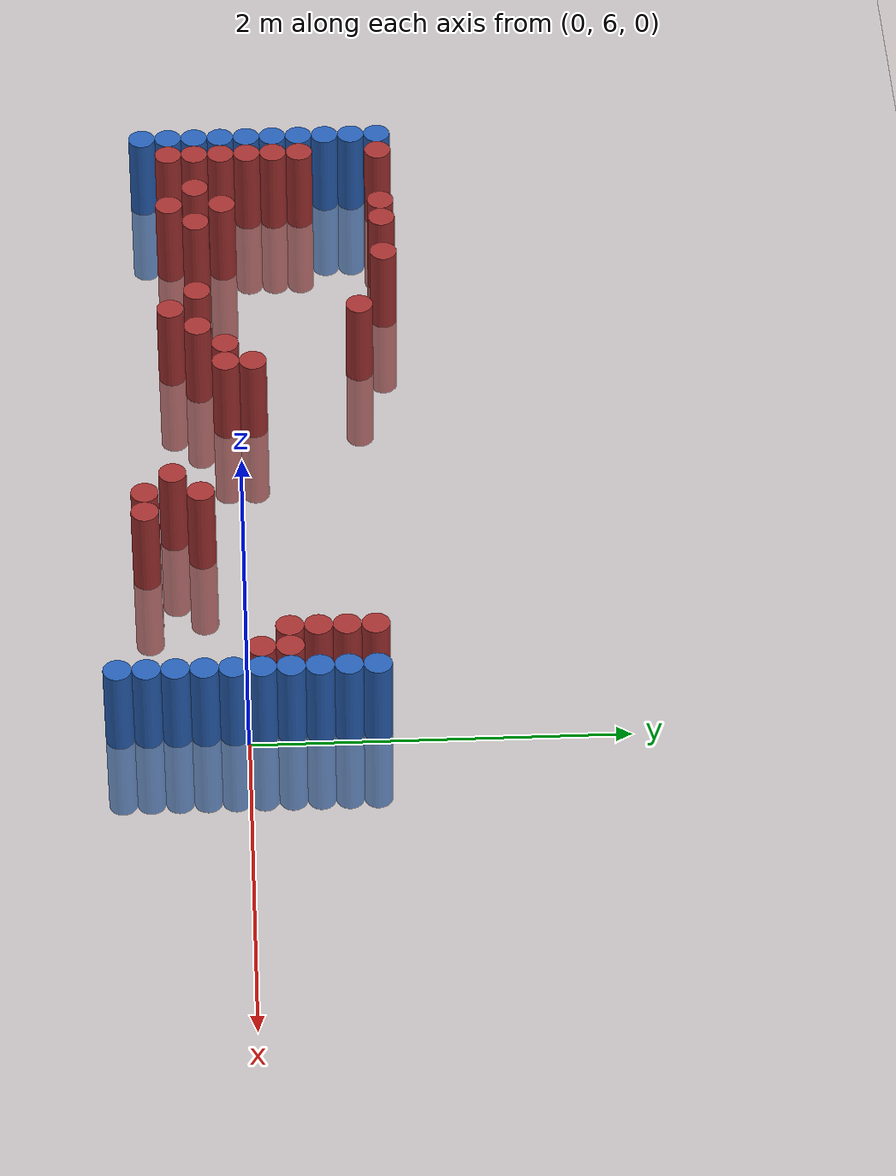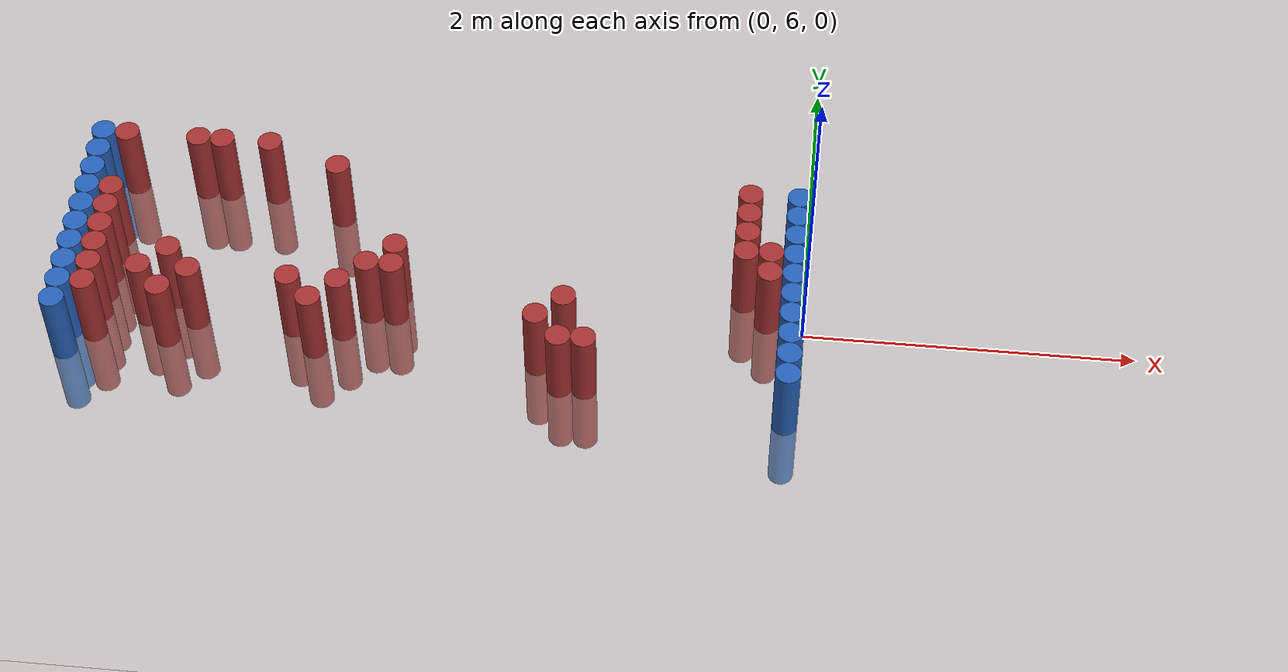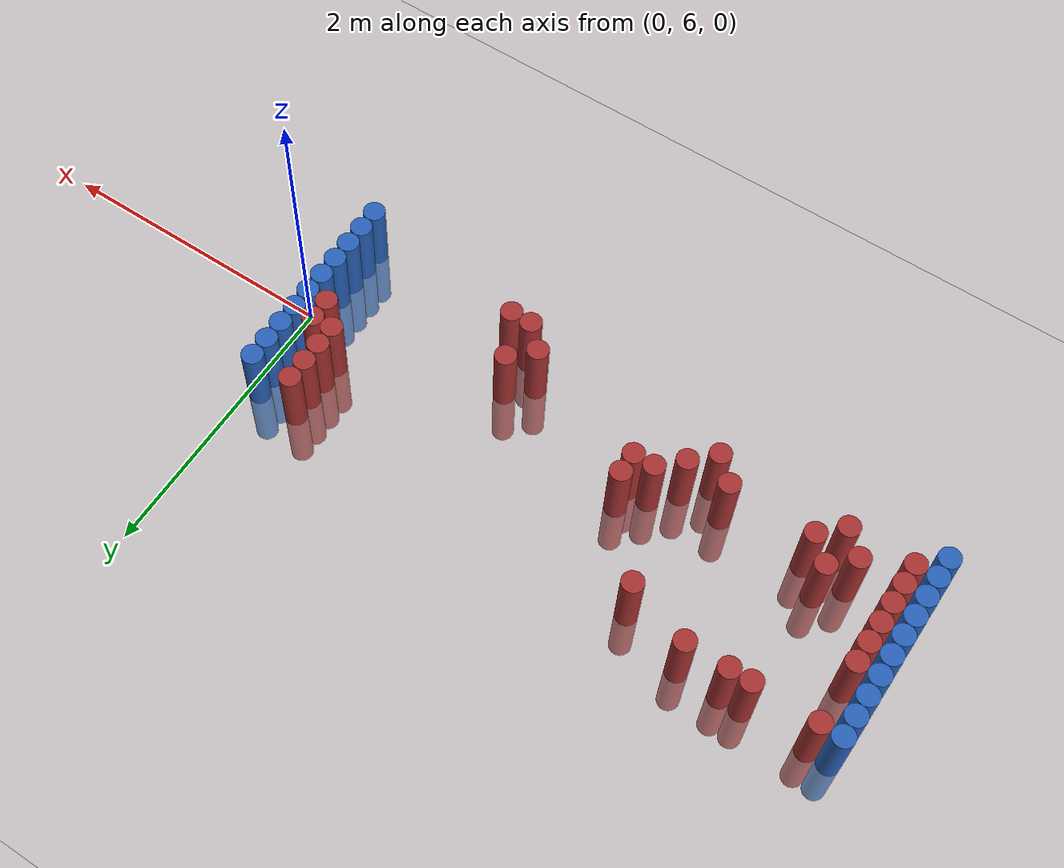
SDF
<sdf version="1.6">
 <world name="default">
  <model name="ground_plane">
   <static>1</static>
   <link name="link">
    <collision name="collision">
     <geometry><plane><normal>0 0 1</normal><size>100 100</size></plane></geometry>
     <surface><friction><ode><mu>100</mu><mu2>50</mu2></ode></friction></surface>
    </collision>
    <visual name="visual">
     <cast_shadows>0</cast_shadows>
     <geometry><plane><normal>0 0 1</normal><size>100 100</size></plane></geometry>
     <material>
      <script><uri>file://media/materials/scripts/gazebo.material</uri><name>Gazebo/Grey</name></script>
     </material>
    </visual>
   </link>
  </model>
  <model name="unit_cylinder_98">
   <static>1</static>
   <pose>-4.425000 5.475000 0.000000 0.000000 0.000000 0.000000</pose>
   <link name="link">
    <inertial>
     <mass>1</mass>
     <inertia><ixx>0.145833</ixx><ixy>0</ixy><ixz>0</ixz><iyy>0.145833</iyy><iyz>0</iyz><izz>0.125</izz></inertia>
    </inertial>
    <collision name="collision">
     <geometry><cylinder><radius>0.075000</radius><length>1</length></cylinder></geometry>
    </collision>
    <visual name="visual">
     <geometry><cylinder><radius>0.075000</radius><length>1</length></cylinder></geometry>
     <material>
      <ambient>0.152000 0.379000 0.720000 1</ambient>
      <diffuse>0.152000 0.379000 0.720000 1</diffuse>
     </material>
     <material>
      <script><name>Gazebo/Grey</name><uri>file://media/materials/scripts/gazebo.material</uri></script>
     </material>
    </visual>
   </link>
  </model>
  <model name="unit_cylinder_99">
   <static>1</static>
   <pose>-4.425000 5.625000 0.000000 0.000000 0.000000 0.000000</pose>
   <link name="link">
    <inertial>
     <mass>1</mass>
     <inertia><ixx>0.145833</ixx><ixy>0</ixy><ixz>0</ixz><iyy>0.145833</iyy><iyz>0</iyz><izz>0.125</izz></inertia>
    </inertial>
    <collision name="collision">
     <geometry><cylinder><radius>0.075000</radius><length>1</length></cylinder></geometry>
    </collision>
    <visual name="visual">
     <geometry><cylinder><radius>0.075000</radius><length>1</length></cylinder></geometry>
     <material>
      <ambient>0.152000 0.379000 0.720000 1</ambient>
      <diffuse>0.152000 0.379000 0.720000 1</diffuse>
     </material>
     <material>
      <script><name>Gazebo/Grey</name><uri>file://media/materials/scripts/gazebo.material</uri></script>
     </material>
    </visual>
   </link>
  </model>
  <model name="unit_cylinder_100">
   <static>1</static>
   <pose>-4.425000 5.775000 0.000000 0.000000 0.000000 0.000000</pose>
   <link name="link">
    <inertial>
     <mass>1</mass>
     <inertia><ixx>0.145833</ixx><ixy>0</ixy><ixz>0</ixz><iyy>0.145833</iyy><iyz>0</iyz><izz>0.125</izz></inertia>
    </inertial>
    <collision name="collision">
     <geometry><cylinder><radius>0.075000</radius><length>1</length></cylinder></geometry>
    </collision>
    <visual name="visual">
     <geometry><cylinder><radius>0.075000</radius><length>1</length></cylinder></geometry>
     <material>
      <ambient>0.152000 0.379000 0.720000 1</ambient>
      <diffuse>0.152000 0.379000 0.720000 1</diffuse>
     </material>
     <material>
      <script><name>Gazebo/Grey</name><uri>file://media/materials/scripts/gazebo.material</uri></script>
     </material>
    </visual>
   </link>
  </model>
  <model name="unit_cylinder_101">
   <static>1</static>
   <pose>-4.425000 5.925000 0.000000 0.000000 0.000000 0.000000</pose>
   <link name="link">
    <inertial>
     <mass>1</mass>
     <inertia><ixx>0.145833</ixx><ixy>0</ixy><ixz>0</ixz><iyy>0.145833</iyy><iyz>0</iyz><izz>0.125</izz></inertia>
    </inertial>
    <collision name="collision">
     <geometry><cylinder><radius>0.075000</radius><length>1</length></cylinder></geometry>
    </collision>
    <visual name="visual">
     <geometry><cylinder><radius>0.075000</radius><length>1</length></cylinder></geometry>
     <material>
      <ambient>0.152000 0.379000 0.720000 1</ambient>
      <diffuse>0.152000 0.379000 0.720000 1</diffuse>
     </material>
     <material>
      <script><name>Gazebo/Grey</name><uri>file://media/materials/scripts/gazebo.material</uri></script>
     </material>
    </visual>
   </link>
  </model>
  <model name="unit_cylinder_102">
   <static>1</static>
   <pose>-4.425000 6.075000 0.000000 0.000000 0.000000 0.000000</pose>
   <link name="link">
    <inertial>
     <mass>1</mass>
     <inertia><ixx>0.145833</ixx><ixy>0</ixy><ixz>0</ixz><iyy>0.145833</iyy><iyz>0</iyz><izz>0.125</izz></inertia>
    </inertial>
    <collision name="collision">
     <geometry><cylinder><radius>0.075000</radius><length>1</length></cylinder></geometry>
    </collision>
    <visual name="visual">
     <geometry><cylinder><radius>0.075000</radius><length>1</length></cylinder></geometry>
     <material>
      <ambient>0.152000 0.379000 0.720000 1</ambient>
      <diffuse>0.152000 0.379000 0.720000 1</diffuse>
     </material>
     <material>
      <script><name>Gazebo/Grey</name><uri>file://media/materials/scripts/gazebo.material</uri></script>
     </material>
    </visual>
   </link>
  </model>
  <model name="unit_cylinder_103">
   <static>1</static>
   <pose>-4.425000 6.225000 0.000000 0.000000 0.000000 0.000000</pose>
   <link name="link">
    <inertial>
     <mass>1</mass>
     <inertia><ixx>0.145833</ixx><ixy>0</ixy><ixz>0</ixz><iyy>0.145833</iyy><iyz>0</iyz><izz>0.125</izz></inertia>
    </inertial>
    <collision name="collision">
     <geometry><cylinder><radius>0.075000</radius><length>1</length></cylinder></geometry>
    </collision>
    <visual name="visual">
     <geometry><cylinder><radius>0.075000</radius><length>1</length></cylinder></geometry>
     <material>
      <ambient>0.152000 0.379000 0.720000 1</ambient>
      <diffuse>0.152000 0.379000 0.720000 1</diffuse>
     </material>
     <material>
      <script><name>Gazebo/Grey</name><uri>file://media/materials/scripts/gazebo.material</uri></script>
     </material>
    </visual>
   </link>
  </model>
  <model name="unit_cylinder_104">
   <static>1</static>
   <pose>-4.425000 6.375000 0.000000 0.000000 0.000000 0.000000</pose>
   <link name="link">
    <inertial>
     <mass>1</mass>
     <inertia><ixx>0.145833</ixx><ixy>0</ixy><ixz>0</ixz><iyy>0.145833</iyy><iyz>0</iyz><izz>0.125</izz></inertia>
    </inertial>
    <collision name="collision">
     <geometry><cylinder><radius>0.075000</radius><length>1</length></cylinder></geometry>
    </collision>
    <visual name="visual">
     <geometry><cylinder><radius>0.075000</radius><length>1</length></cylinder></geometry>
     <material>
      <ambient>0.152000 0.379000 0.720000 1</ambient>
      <diffuse>0.152000 0.379000 0.720000 1</diffuse>
     </material>
     <material>
      <script><name>Gazebo/Grey</name><uri>file://media/materials/scripts/gazebo.material</uri></script>
     </material>
    </visual>
   </link>
  </model>
  <model name="unit_cylinder_105">
   <static>1</static>
   <pose>-4.425000 6.525000 0.000000 0.000000 0.000000 0.000000</pose>
   <link name="link">
    <inertial>
     <mass>1</mass>
     <inertia><ixx>0.145833</ixx><ixy>0</ixy><ixz>0</ixz><iyy>0.145833</iyy><iyz>0</iyz><izz>0.125</izz></inertia>
    </inertial>
    <collision name="collision">
     <geometry><cylinder><radius>0.075000</radius><length>1</length></cylinder></geometry>
    </collision>
    <visual name="visual">
     <geometry><cylinder><radius>0.075000</radius><length>1</length></cylinder></geometry>
     <material>
      <ambient>0.152000 0.379000 0.720000 1</ambient>
      <diffuse>0.152000 0.379000 0.720000 1</diffuse>
     </material>
     <material>
      <script><name>Gazebo/Grey</name><uri>file://media/materials/scripts/gazebo.material</uri></script>
     </material>
    </visual>
   </link>
  </model>
  <model name="unit_cylinder_106">
   <static>1</static>
   <pose>-4.425000 6.675000 0.000000 0.000000 0.000000 0.000000</pose>
   <link name="link">
    <inertial>
     <mass>1</mass>
     <inertia><ixx>0.145833</ixx><ixy>0</ixy><ixz>0</ixz><iyy>0.145833</iyy><iyz>0</iyz><izz>0.125</izz></inertia>
    </inertial>
    <collision name="collision">
     <geometry><cylinder><radius>0.075000</radius><length>1</length></cylinder></geometry>
    </collision>
    <visual name="visual">
     <geometry><cylinder><radius>0.075000</radius><length>1</length></cylinder></geometry>
     <material>
      <ambient>0.152000 0.379000 0.720000 1</ambient>
      <diffuse>0.152000 0.379000 0.720000 1</diffuse>
     </material>
     <material>
      <script><name>Gazebo/Grey</name><uri>file://media/materials/scripts/gazebo.material</uri></script>
     </material>
    </visual>
   </link>
  </model>
  <model name="unit_cylinder_107">
   <static>1</static>
   <pose>-4.425000 6.825000 0.000000 0.000000 0.000000 0.000000</pose>
   <link name="link">
    <inertial>
     <mass>1</mass>
     <inertia><ixx>0.145833</ixx><ixy>0</ixy><ixz>0</ixz><iyy>0.145833</iyy><iyz>0</iyz><izz>0.125</izz></inertia>
    </inertial>
    <collision name="collision">
     <geometry><cylinder><radius>0.075000</radius><length>1</length></cylinder></geometry>
    </collision>
    <visual name="visual">
     <geometry><cylinder><radius>0.075000</radius><length>1</length></cylinder></geometry>
     <material>
      <ambient>0.152000 0.379000 0.720000 1</ambient>
      <diffuse>0.152000 0.379000 0.720000 1</diffuse>
     </material>
     <material>
      <script><name>Gazebo/Grey</name><uri>file://media/materials/scripts/gazebo.material</uri></script>
     </material>
    </visual>
   </link>
  </model>
  <model name="unit_cylinder_126">
   <static>1</static>
   <pose>-4.275000 5.625000 0.000000 0.000000 0.000000 0.000000</pose>
   <link name="link">
    <inertial>
     <mass>1</mass>
     <inertia><ixx>0.145833</ixx><ixy>0</ixy><ixz>0</ixz><iyy>0.145833</iyy><iyz>0</iyz><izz>0.125</izz></inertia>
    </inertial>
    <collision name="collision">
     <geometry><cylinder><radius>0.075000</radius><length>1</length></cylinder></geometry>
    </collision>
    <visual name="visual">
     <geometry><cylinder><radius>0.075000</radius><length>1</length></cylinder></geometry>
     <material>
      <ambient>0.648000 0.192000 0.192000 1</ambient>
      <diffuse>0.648000 0.192000 0.192000 1</diffuse>
     </material>
     <material>
      <script><name>Gazebo/Grey</name><uri>file://media/materials/scripts/gazebo.material</uri></script>
     </material>
    </visual>
   </link>
  </model>
  <model name="unit_cylinder_127">
   <static>1</static>
   <pose>-4.275000 5.775000 0.000000 0.000000 0.000000 0.000000</pose>
   <link name="link">
    <inertial>
     <mass>1</mass>
     <inertia><ixx>0.145833</ixx><ixy>0</ixy><ixz>0</ixz><iyy>0.145833</iyy><iyz>0</iyz><izz>0.125</izz></inertia>
    </inertial>
    <collision name="collision">
     <geometry><cylinder><radius>0.075000</radius><length>1</length></cylinder></geometry>
    </collision>
    <visual name="visual">
     <geometry><cylinder><radius>0.075000</radius><length>1</length></cylinder></geometry>
     <material>
      <ambient>0.648000 0.192000 0.192000 1</ambient>
      <diffuse>0.648000 0.192000 0.192000 1</diffuse>
     </material>
     <material>
      <script><name>Gazebo/Grey</name><uri>file://media/materials/scripts/gazebo.material</uri></script>
     </material>
    </visual>
   </link>
  </model>
  <model name="unit_cylinder_128">
   <static>1</static>
   <pose>-4.275000 5.925000 0.000000 0.000000 0.000000 0.000000</pose>
   <link name="link">
    <inertial>
     <mass>1</mass>
     <inertia><ixx>0.145833</ixx><ixy>0</ixy><ixz>0</ixz><iyy>0.145833</iyy><iyz>0</iyz><izz>0.125</izz></inertia>
    </inertial>
    <collision name="collision">
     <geometry><cylinder><radius>0.075000</radius><length>1</length></cylinder></geometry>
    </collision>
    <visual name="visual">
     <geometry><cylinder><radius>0.075000</radius><length>1</length></cylinder></geometry>
     <material>
      <ambient>0.648000 0.192000 0.192000 1</ambient>
      <diffuse>0.648000 0.192000 0.192000 1</diffuse>
     </material>
     <material>
      <script><name>Gazebo/Grey</name><uri>file://media/materials/scripts/gazebo.material</uri></script>
     </material>
    </visual>
   </link>
  </model>
  <model name="unit_cylinder_129">
   <static>1</static>
   <pose>-4.275000 6.075000 0.000000 0.000000 0.000000 0.000000</pose>
   <link name="link">
    <inertial>
     <mass>1</mass>
     <inertia><ixx>0.145833</ixx><ixy>0</ixy><ixz>0</ixz><iyy>0.145833</iyy><iyz>0</iyz><izz>0.125</izz></inertia>
    </inertial>
    <collision name="collision">
     <geometry><cylinder><radius>0.075000</radius><length>1</length></cylinder></geometry>
    </collision>
    <visual name="visual">
     <geometry><cylinder><radius>0.075000</radius><length>1</length></cylinder></geometry>
     <material>
      <ambient>0.648000 0.192000 0.192000 1</ambient>
      <diffuse>0.648000 0.192000 0.192000 1</diffuse>
     </material>
     <material>
      <script><name>Gazebo/Grey</name><uri>file://media/materials/scripts/gazebo.material</uri></script>
     </material>
    </visual>
   </link>
  </model>
  <model name="unit_cylinder_130">
   <static>1</static>
   <pose>-4.275000 6.225000 0.000000 0.000000 0.000000 0.000000</pose>
   <link name="link">
    <inertial>
     <mass>1</mass>
     <inertia><ixx>0.145833</ixx><ixy>0</ixy><ixz>0</ixz><iyy>0.145833</iyy><iyz>0</iyz><izz>0.125</izz></inertia>
    </inertial>
    <collision name="collision">
     <geometry><cylinder><radius>0.075000</radius><length>1</length></cylinder></geometry>
    </collision>
    <visual name="visual">
     <geometry><cylinder><radius>0.075000</radius><length>1</length></cylinder></geometry>
     <material>
      <ambient>0.648000 0.192000 0.192000 1</ambient>
      <diffuse>0.648000 0.192000 0.192000 1</diffuse>
     </material>
     <material>
      <script><name>Gazebo/Grey</name><uri>file://media/materials/scripts/gazebo.material</uri></script>
     </material>
    </visual>
   </link>
  </model>
  <model name="unit_cylinder_131">
   <static>1</static>
   <pose>-4.275000 6.375000 0.000000 0.000000 0.000000 0.000000</pose>
   <link name="link">
    <inertial>
     <mass>1</mass>
     <inertia><ixx>0.145833</ixx><ixy>0</ixy><ixz>0</ixz><iyy>0.145833</iyy><iyz>0</iyz><izz>0.125</izz></inertia>
    </inertial>
    <collision name="collision">
     <geometry><cylinder><radius>0.075000</radius><length>1</length></cylinder></geometry>
    </collision>
    <visual name="visual">
     <geometry><cylinder><radius>0.075000</radius><length>1</length></cylinder></geometry>
     <material>
      <ambient>0.648000 0.192000 0.192000 1</ambient>
      <diffuse>0.648000 0.192000 0.192000 1</diffuse>
     </material>
     <material>
      <script><name>Gazebo/Grey</name><uri>file://media/materials/scripts/gazebo.material</uri></script>
     </material>
    </visual>
   </link>
  </model>
  <model name="unit_cylinder_132">
   <static>1</static>
   <pose>-4.275000 6.825000 0.000000 0.000000 0.000000 0.000000</pose>
   <link name="link">
    <inertial>
     <mass>1</mass>
     <inertia><ixx>0.145833</ixx><ixy>0</ixy><ixz>0</ixz><iyy>0.145833</iyy><iyz>0</iyz><izz>0.125</izz></inertia>
    </inertial>
    <collision name="collision">
     <geometry><cylinder><radius>0.075000</radius><length>1</length></cylinder></geometry>
    </collision>
    <visual name="visual">
     <geometry><cylinder><radius>0.075000</radius><length>1</length></cylinder></geometry>
     <material>
      <ambient>0.648000 0.192000 0.192000 1</ambient>
      <diffuse>0.648000 0.192000 0.192000 1</diffuse>
     </material>
     <material>
      <script><name>Gazebo/Grey</name><uri>file://media/materials/scripts/gazebo.material</uri></script>
     </material>
    </visual>
   </link>
  </model>
  <model name="unit_cylinder_150">
   <static>1</static>
   <pose>-3.975000 5.775000 0.000000 0.000000 0.000000 0.000000</pose>
   <link name="link">
    <inertial>
     <mass>1</mass>
     <inertia><ixx>0.145833</ixx><ixy>0</ixy><ixz>0</ixz><iyy>0.145833</iyy><iyz>0</iyz><izz>0.125</izz></inertia>
    </inertial>
    <collision name="collision">
     <geometry><cylinder><radius>0.075000</radius><length>1</length></cylinder></geometry>
    </collision>
    <visual name="visual">
     <geometry><cylinder><radius>0.075000</radius><length>1</length></cylinder></geometry>
     <material>
      <ambient>0.648000 0.192000 0.192000 1</ambient>
      <diffuse>0.648000 0.192000 0.192000 1</diffuse>
     </material>
     <material>
      <script><name>Gazebo/Grey</name><uri>file://media/materials/scripts/gazebo.material</uri></script>
     </material>
    </visual>
   </link>
  </model>
  <model name="unit_cylinder_155">
   <static>1</static>
   <pose>-3.825000 5.625000 0.000000 0.000000 0.000000 0.000000</pose>
   <link name="link">
    <inertial>
     <mass>1</mass>
     <inertia><ixx>0.145833</ixx><ixy>0</ixy><ixz>0</ixz><iyy>0.145833</iyy><iyz>0</iyz><izz>0.125</izz></inertia>
    </inertial>
    <collision name="collision">
     <geometry><cylinder><radius>0.075000</radius><length>1</length></cylinder></geometry>
    </collision>
    <visual name="visual">
     <geometry><cylinder><radius>0.075000</radius><length>1</length></cylinder></geometry>
     <material>
      <ambient>0.648000 0.192000 0.192000 1</ambient>
      <diffuse>0.648000 0.192000 0.192000 1</diffuse>
     </material>
     <material>
      <script><name>Gazebo/Grey</name><uri>file://media/materials/scripts/gazebo.material</uri></script>
     </material>
    </visual>
   </link>
  </model>
  <model name="unit_cylinder_156">
   <static>1</static>
   <pose>-3.825000 5.925000 0.000000 0.000000 0.000000 0.000000</pose>
   <link name="link">
    <inertial>
     <mass>1</mass>
     <inertia><ixx>0.145833</ixx><ixy>0</ixy><ixz>0</ixz><iyy>0.145833</iyy><iyz>0</iyz><izz>0.125</izz></inertia>
    </inertial>
    <collision name="collision">
     <geometry><cylinder><radius>0.075000</radius><length>1</length></cylinder></geometry>
    </collision>
    <visual name="visual">
     <geometry><cylinder><radius>0.075000</radius><length>1</length></cylinder></geometry>
     <material>
      <ambient>0.648000 0.192000 0.192000 1</ambient>
      <diffuse>0.648000 0.192000 0.192000 1</diffuse>
     </material>
     <material>
      <script><name>Gazebo/Grey</name><uri>file://media/materials/scripts/gazebo.material</uri></script>
     </material>
    </visual>
   </link>
  </model>
  <model name="unit_cylinder_157">
   <static>1</static>
   <pose>-3.825000 6.825000 0.000000 0.000000 0.000000 0.000000</pose>
   <link name="link">
    <inertial>
     <mass>1</mass>
     <inertia><ixx>0.145833</ixx><ixy>0</ixy><ixz>0</ixz><iyy>0.145833</iyy><iyz>0</iyz><izz>0.125</izz></inertia>
    </inertial>
    <collision name="collision">
     <geometry><cylinder><radius>0.075000</radius><length>1</length></cylinder></geometry>
    </collision>
    <visual name="visual">
     <geometry><cylinder><radius>0.075000</radius><length>1</length></cylinder></geometry>
     <material>
      <ambient>0.648000 0.192000 0.192000 1</ambient>
      <diffuse>0.648000 0.192000 0.192000 1</diffuse>
     </material>
     <material>
      <script><name>Gazebo/Grey</name><uri>file://media/materials/scripts/gazebo.material</uri></script>
     </material>
    </visual>
   </link>
  </model>
  <model name="unit_cylinder_161">
   <static>1</static>
   <pose>-3.675000 5.775000 0.000000 0.000000 0.000000 0.000000</pose>
   <link name="link">
    <inertial>
     <mass>1</mass>
     <inertia><ixx>0.145833</ixx><ixy>0</ixy><ixz>0</ixz><iyy>0.145833</iyy><iyz>0</iyz><izz>0.125</izz></inertia>
    </inertial>
    <collision name="collision">
     <geometry><cylinder><radius>0.075000</radius><length>1</length></cylinder></geometry>
    </collision>
    <visual name="visual">
     <geometry><cylinder><radius>0.075000</radius><length>1</length></cylinder></geometry>
     <material>
      <ambient>0.648000 0.192000 0.192000 1</ambient>
      <diffuse>0.648000 0.192000 0.192000 1</diffuse>
     </material>
     <material>
      <script><name>Gazebo/Grey</name><uri>file://media/materials/scripts/gazebo.material</uri></script>
     </material>
    </visual>
   </link>
  </model>
  <model name="unit_cylinder_162">
   <static>1</static>
   <pose>-3.675000 6.825000 0.000000 0.000000 0.000000 0.000000</pose>
   <link name="link">
    <inertial>
     <mass>1</mass>
     <inertia><ixx>0.145833</ixx><ixy>0</ixy><ixz>0</ixz><iyy>0.145833</iyy><iyz>0</iyz><izz>0.125</izz></inertia>
    </inertial>
    <collision name="collision">
     <geometry><cylinder><radius>0.075000</radius><length>1</length></cylinder></geometry>
    </collision>
    <visual name="visual">
     <geometry><cylinder><radius>0.075000</radius><length>1</length></cylinder></geometry>
     <material>
      <ambient>0.648000 0.192000 0.192000 1</ambient>
      <diffuse>0.648000 0.192000 0.192000 1</diffuse>
     </material>
     <material>
      <script><name>Gazebo/Grey</name><uri>file://media/materials/scripts/gazebo.material</uri></script>
     </material>
    </visual>
   </link>
  </model>
  <model name="unit_cylinder_171">
   <static>1</static>
   <pose>-3.375000 6.825000 0.000000 0.000000 0.000000 0.000000</pose>
   <link name="link">
    <inertial>
     <mass>1</mass>
     <inertia><ixx>0.145833</ixx><ixy>0</ixy><ixz>0</ixz><iyy>0.145833</iyy><iyz>0</iyz><izz>0.125</izz></inertia>
    </inertial>
    <collision name="collision">
     <geometry><cylinder><radius>0.075000</radius><length>1</length></cylinder></geometry>
    </collision>
    <visual name="visual">
     <geometry><cylinder><radius>0.075000</radius><length>1</length></cylinder></geometry>
     <material>
      <ambient>0.648000 0.192000 0.192000 1</ambient>
      <diffuse>0.648000 0.192000 0.192000 1</diffuse>
     </material>
     <material>
      <script><name>Gazebo/Grey</name><uri>file://media/materials/scripts/gazebo.material</uri></script>
     </material>
    </visual>
   </link>
  </model>
  <model name="unit_cylinder_177">
   <static>1</static>
   <pose>-3.075000 5.775000 0.000000 0.000000 0.000000 0.000000</pose>
   <link name="link">
    <inertial>
     <mass>1</mass>
     <inertia><ixx>0.145833</ixx><ixy>0</ixy><ixz>0</ixz><iyy>0.145833</iyy><iyz>0</iyz><izz>0.125</izz></inertia>
    </inertial>
    <collision name="collision">
     <geometry><cylinder><radius>0.075000</radius><length>1</length></cylinder></geometry>
    </collision>
    <visual name="visual">
     <geometry><cylinder><radius>0.075000</radius><length>1</length></cylinder></geometry>
     <material>
      <ambient>0.648000 0.192000 0.192000 1</ambient>
      <diffuse>0.648000 0.192000 0.192000 1</diffuse>
     </material>
     <material>
      <script><name>Gazebo/Grey</name><uri>file://media/materials/scripts/gazebo.material</uri></script>
     </material>
    </visual>
   </link>
  </model>
  <model name="unit_cylinder_181">
   <static>1</static>
   <pose>-2.925000 5.625000 0.000000 0.000000 0.000000 0.000000</pose>
   <link name="link">
    <inertial>
     <mass>1</mass>
     <inertia><ixx>0.145833</ixx><ixy>0</ixy><ixz>0</ixz><iyy>0.145833</iyy><iyz>0</iyz><izz>0.125</izz></inertia>
    </inertial>
    <collision name="collision">
     <geometry><cylinder><radius>0.075000</radius><length>1</length></cylinder></geometry>
    </collision>
    <visual name="visual">
     <geometry><cylinder><radius>0.075000</radius><length>1</length></cylinder></geometry>
     <material>
      <ambient>0.648000 0.192000 0.192000 1</ambient>
      <diffuse>0.648000 0.192000 0.192000 1</diffuse>
     </material>
     <material>
      <script><name>Gazebo/Grey</name><uri>file://media/materials/scripts/gazebo.material</uri></script>
     </material>
    </visual>
   </link>
  </model>
  <model name="unit_cylinder_182">
   <static>1</static>
   <pose>-2.925000 6.675000 0.000000 0.000000 0.000000 0.000000</pose>
   <link name="link">
    <inertial>
     <mass>1</mass>
     <inertia><ixx>0.145833</ixx><ixy>0</ixy><ixz>0</ixz><iyy>0.145833</iyy><iyz>0</iyz><izz>0.125</izz></inertia>
    </inertial>
    <collision name="collision">
     <geometry><cylinder><radius>0.075000</radius><length>1</length></cylinder></geometry>
    </collision>
    <visual name="visual">
     <geometry><cylinder><radius>0.075000</radius><length>1</length></cylinder></geometry>
     <material>
      <ambient>0.648000 0.192000 0.192000 1</ambient>
      <diffuse>0.648000 0.192000 0.192000 1</diffuse>
     </material>
     <material>
      <script><name>Gazebo/Grey</name><uri>file://media/materials/scripts/gazebo.material</uri></script>
     </material>
    </visual>
   </link>
  </model>
  <model name="unit_cylinder_186">
   <static>1</static>
   <pose>-2.775000 5.775000 0.000000 0.000000 0.000000 0.000000</pose>
   <link name="link">
    <inertial>
     <mass>1</mass>
     <inertia><ixx>0.145833</ixx><ixy>0</ixy><ixz>0</ixz><iyy>0.145833</iyy><iyz>0</iyz><izz>0.125</izz></inertia>
    </inertial>
    <collision name="collision">
     <geometry><cylinder><radius>0.075000</radius><length>1</length></cylinder></geometry>
    </collision>
    <visual name="visual">
     <geometry><cylinder><radius>0.075000</radius><length>1</length></cylinder></geometry>
     <material>
      <ambient>0.648000 0.192000 0.192000 1</ambient>
      <diffuse>0.648000 0.192000 0.192000 1</diffuse>
     </material>
     <material>
      <script><name>Gazebo/Grey</name><uri>file://media/materials/scripts/gazebo.material</uri></script>
     </material>
    </visual>
   </link>
  </model>
  <model name="unit_cylinder_191">
   <static>1</static>
   <pose>-2.625000 5.925000 0.000000 0.000000 0.000000 0.000000</pose>
   <link name="link">
    <inertial>
     <mass>1</mass>
     <inertia><ixx>0.145833</ixx><ixy>0</ixy><ixz>0</ixz><iyy>0.145833</iyy><iyz>0</iyz><izz>0.125</izz></inertia>
    </inertial>
    <collision name="collision">
     <geometry><cylinder><radius>0.075000</radius><length>1</length></cylinder></geometry>
    </collision>
    <visual name="visual">
     <geometry><cylinder><radius>0.075000</radius><length>1</length></cylinder></geometry>
     <material>
      <ambient>0.648000 0.192000 0.192000 1</ambient>
      <diffuse>0.648000 0.192000 0.192000 1</diffuse>
     </material>
     <material>
      <script><name>Gazebo/Grey</name><uri>file://media/materials/scripts/gazebo.material</uri></script>
     </material>
    </visual>
   </link>
  </model>
  <model name="unit_cylinder_194">
   <static>1</static>
   <pose>-2.475000 5.925000 0.000000 0.000000 0.000000 0.000000</pose>
   <link name="link">
    <inertial>
     <mass>1</mass>
     <inertia><ixx>0.145833</ixx><ixy>0</ixy><ixz>0</ixz><iyy>0.145833</iyy><iyz>0</iyz><izz>0.125</izz></inertia>
    </inertial>
    <collision name="collision">
     <geometry><cylinder><radius>0.075000</radius><length>1</length></cylinder></geometry>
    </collision>
    <visual name="visual">
     <geometry><cylinder><radius>0.075000</radius><length>1</length></cylinder></geometry>
     <material>
      <ambient>0.648000 0.192000 0.192000 1</ambient>
      <diffuse>0.648000 0.192000 0.192000 1</diffuse>
     </material>
     <material>
      <script><name>Gazebo/Grey</name><uri>file://media/materials/scripts/gazebo.material</uri></script>
     </material>
    </visual>
   </link>
  </model>
  <model name="unit_cylinder_195">
   <static>1</static>
   <pose>-2.475000 6.075000 0.000000 0.000000 0.000000 0.000000</pose>
   <link name="link">
    <inertial>
     <mass>1</mass>
     <inertia><ixx>0.145833</ixx><ixy>0</ixy><ixz>0</ixz><iyy>0.145833</iyy><iyz>0</iyz><izz>0.125</izz></inertia>
    </inertial>
    <collision name="collision">
     <geometry><cylinder><radius>0.075000</radius><length>1</length></cylinder></geometry>
    </collision>
    <visual name="visual">
     <geometry><cylinder><radius>0.075000</radius><length>1</length></cylinder></geometry>
     <material>
      <ambient>0.648000 0.192000 0.192000 1</ambient>
      <diffuse>0.648000 0.192000 0.192000 1</diffuse>
     </material>
     <material>
      <script><name>Gazebo/Grey</name><uri>file://media/materials/scripts/gazebo.material</uri></script>
     </material>
    </visual>
   </link>
  </model>
  <model name="unit_cylinder_213">
   <static>1</static>
   <pose>-1.575000 5.625000 0.000000 0.000000 0.000000 0.000000</pose>
   <link name="link">
    <inertial>
     <mass>1</mass>
     <inertia><ixx>0.145833</ixx><ixy>0</ixy><ixz>0</ixz><iyy>0.145833</iyy><iyz>0</iyz><izz>0.125</izz></inertia>
    </inertial>
    <collision name="collision">
     <geometry><cylinder><radius>0.075000</radius><length>1</length></cylinder></geometry>
    </collision>
    <visual name="visual">
     <geometry><cylinder><radius>0.075000</radius><length>1</length></cylinder></geometry>
     <material>
      <ambient>0.648000 0.192000 0.192000 1</ambient>
      <diffuse>0.648000 0.192000 0.192000 1</diffuse>
     </material>
     <material>
      <script><name>Gazebo/Grey</name><uri>file://media/materials/scripts/gazebo.material</uri></script>
     </material>
    </visual>
   </link>
  </model>
  <model name="unit_cylinder_218">
   <static>1</static>
   <pose>-1.425000 5.475000 0.000000 0.000000 0.000000 0.000000</pose>
   <link name="link">
    <inertial>
     <mass>1</mass>
     <inertia><ixx>0.145833</ixx><ixy>0</ixy><ixz>0</ixz><iyy>0.145833</iyy><iyz>0</iyz><izz>0.125</izz></inertia>
    </inertial>
    <collision name="collision">
     <geometry><cylinder><radius>0.075000</radius><length>1</length></cylinder></geometry>
    </collision>
    <visual name="visual">
     <geometry><cylinder><radius>0.075000</radius><length>1</length></cylinder></geometry>
     <material>
      <ambient>0.648000 0.192000 0.192000 1</ambient>
      <diffuse>0.648000 0.192000 0.192000 1</diffuse>
     </material>
     <material>
      <script><name>Gazebo/Grey</name><uri>file://media/materials/scripts/gazebo.material</uri></script>
     </material>
    </visual>
   </link>
  </model>
  <model name="unit_cylinder_219">
   <static>1</static>
   <pose>-1.425000 5.775000 0.000000 0.000000 0.000000 0.000000</pose>
   <link name="link">
    <inertial>
     <mass>1</mass>
     <inertia><ixx>0.145833</ixx><ixy>0</ixy><ixz>0</ixz><iyy>0.145833</iyy><iyz>0</iyz><izz>0.125</izz></inertia>
    </inertial>
    <collision name="collision">
     <geometry><cylinder><radius>0.075000</radius><length>1</length></cylinder></geometry>
    </collision>
    <visual name="visual">
     <geometry><cylinder><radius>0.075000</radius><length>1</length></cylinder></geometry>
     <material>
      <ambient>0.648000 0.192000 0.192000 1</ambient>
      <diffuse>0.648000 0.192000 0.192000 1</diffuse>
     </material>
     <material>
      <script><name>Gazebo/Grey</name><uri>file://media/materials/scripts/gazebo.material</uri></script>
     </material>
    </visual>
   </link>
  </model>
  <model name="unit_cylinder_223">
   <static>1</static>
   <pose>-1.275000 5.475000 0.000000 0.000000 0.000000 0.000000</pose>
   <link name="link">
    <inertial>
     <mass>1</mass>
     <inertia><ixx>0.145833</ixx><ixy>0</ixy><ixz>0</ixz><iyy>0.145833</iyy><iyz>0</iyz><izz>0.125</izz></inertia>
    </inertial>
    <collision name="collision">
     <geometry><cylinder><radius>0.075000</radius><length>1</length></cylinder></geometry>
    </collision>
    <visual name="visual">
     <geometry><cylinder><radius>0.075000</radius><length>1</length></cylinder></geometry>
     <material>
      <ambient>0.648000 0.192000 0.192000 1</ambient>
      <diffuse>0.648000 0.192000 0.192000 1</diffuse>
     </material>
     <material>
      <script><name>Gazebo/Grey</name><uri>file://media/materials/scripts/gazebo.material</uri></script>
     </material>
    </visual>
   </link>
  </model>
  <model name="unit_cylinder_255">
   <static>1</static>
   <pose>-0.375000 6.225000 0.000000 0.000000 0.000000 0.000000</pose>
   <link name="link">
    <inertial>
     <mass>1</mass>
     <inertia><ixx>0.145833</ixx><ixy>0</ixy><ixz>0</ixz><iyy>0.145833</iyy><iyz>0</iyz><izz>0.125</izz></inertia>
    </inertial>
    <collision name="collision">
     <geometry><cylinder><radius>0.075000</radius><length>1</length></cylinder></geometry>
    </collision>
    <visual name="visual">
     <geometry><cylinder><radius>0.075000</radius><length>1</length></cylinder></geometry>
     <material>
      <ambient>0.648000 0.192000 0.192000 1</ambient>
      <diffuse>0.648000 0.192000 0.192000 1</diffuse>
     </material>
     <material>
      <script><name>Gazebo/Grey</name><uri>file://media/materials/scripts/gazebo.material</uri></script>
     </material>
    </visual>
   </link>
  </model>
  <model name="unit_cylinder_256">
   <static>1</static>
   <pose>-0.375000 6.375000 0.000000 0.000000 0.000000 0.000000</pose>
   <link name="link">
    <inertial>
     <mass>1</mass>
     <inertia><ixx>0.145833</ixx><ixy>0</ixy><ixz>0</ixz><iyy>0.145833</iyy><iyz>0</iyz><izz>0.125</izz></inertia>
    </inertial>
    <collision name="collision">
     <geometry><cylinder><radius>0.075000</radius><length>1</length></cylinder></geometry>
    </collision>
    <visual name="visual">
     <geometry><cylinder><radius>0.075000</radius><length>1</length></cylinder></geometry>
     <material>
      <ambient>0.648000 0.192000 0.192000 1</ambient>
      <diffuse>0.648000 0.192000 0.192000 1</diffuse>
     </material>
     <material>
      <script><name>Gazebo/Grey</name><uri>file://media/materials/scripts/gazebo.material</uri></script>
     </material>
    </visual>
   </link>
  </model>
  <model name="unit_cylinder_257">
   <static>1</static>
   <pose>-0.375000 6.525000 0.000000 0.000000 0.000000 0.000000</pose>
   <link name="link">
    <inertial>
     <mass>1</mass>
     <inertia><ixx>0.145833</ixx><ixy>0</ixy><ixz>0</ixz><iyy>0.145833</iyy><iyz>0</iyz><izz>0.125</izz></inertia>
    </inertial>
    <collision name="collision">
     <geometry><cylinder><radius>0.075000</radius><length>1</length></cylinder></geometry>
    </collision>
    <visual name="visual">
     <geometry><cylinder><radius>0.075000</radius><length>1</length></cylinder></geometry>
     <material>
      <ambient>0.648000 0.192000 0.192000 1</ambient>
      <diffuse>0.648000 0.192000 0.192000 1</diffuse>
     </material>
     <material>
      <script><name>Gazebo/Grey</name><uri>file://media/materials/scripts/gazebo.material</uri></script>
     </material>
    </visual>
   </link>
  </model>
  <model name="unit_cylinder_258">
   <static>1</static>
   <pose>-0.375000 6.675000 0.000000 0.000000 0.000000 0.000000</pose>
   <link name="link">
    <inertial>
     <mass>1</mass>
     <inertia><ixx>0.145833</ixx><ixy>0</ixy><ixz>0</ixz><iyy>0.145833</iyy><iyz>0</iyz><izz>0.125</izz></inertia>
    </inertial>
    <collision name="collision">
     <geometry><cylinder><radius>0.075000</radius><length>1</length></cylinder></geometry>
    </collision>
    <visual name="visual">
     <geometry><cylinder><radius>0.075000</radius><length>1</length></cylinder></geometry>
     <material>
      <ambient>0.648000 0.192000 0.192000 1</ambient>
      <diffuse>0.648000 0.192000 0.192000 1</diffuse>
     </material>
     <material>
      <script><name>Gazebo/Grey</name><uri>file://media/materials/scripts/gazebo.material</uri></script>
     </material>
    </visual>
   </link>
  </model>
  <model name="unit_cylinder_267">
   <static>1</static>
   <pose>-0.225000 6.075000 0.000000 0.000000 0.000000 0.000000</pose>
   <link name="link">
    <inertial>
     <mass>1</mass>
     <inertia><ixx>0.145833</ixx><ixy>0</ixy><ixz>0</ixz><iyy>0.145833</iyy><iyz>0</iyz><izz>0.125</izz></inertia>
    </inertial>
    <collision name="collision">
     <geometry><cylinder><radius>0.075000</radius><length>1</length></cylinder></geometry>
    </collision>
    <visual name="visual">
     <geometry><cylinder><radius>0.075000</radius><length>1</length></cylinder></geometry>
     <material>
      <ambient>0.648000 0.192000 0.192000 1</ambient>
      <diffuse>0.648000 0.192000 0.192000 1</diffuse>
     </material>
     <material>
      <script><name>Gazebo/Grey</name><uri>file://media/materials/scripts/gazebo.material</uri></script>
     </material>
    </visual>
   </link>
  </model>
  <model name="unit_cylinder_268">
   <static>1</static>
   <pose>-0.225000 6.225000 0.000000 0.000000 0.000000 0.000000</pose>
   <link name="link">
    <inertial>
     <mass>1</mass>
     <inertia><ixx>0.145833</ixx><ixy>0</ixy><ixz>0</ixz><iyy>0.145833</iyy><iyz>0</iyz><izz>0.125</izz></inertia>
    </inertial>
    <collision name="collision">
     <geometry><cylinder><radius>0.075000</radius><length>1</length></cylinder></geometry>
    </collision>
    <visual name="visual">
     <geometry><cylinder><radius>0.075000</radius><length>1</length></cylinder></geometry>
     <material>
      <ambient>0.648000 0.192000 0.192000 1</ambient>
      <diffuse>0.648000 0.192000 0.192000 1</diffuse>
     </material>
     <material>
      <script><name>Gazebo/Grey</name><uri>file://media/materials/scripts/gazebo.material</uri></script>
     </material>
    </visual>
   </link>
  </model>
  <model name="unit_cylinder_279">
   <static>1</static>
   <pose>-0.075000 5.325000 0.000000 0.000000 0.000000 0.000000</pose>
   <link name="link">
    <inertial>
     <mass>1</mass>
     <inertia><ixx>0.145833</ixx><ixy>0</ixy><ixz>0</ixz><iyy>0.145833</iyy><iyz>0</iyz><izz>0.125</izz></inertia>
    </inertial>
    <collision name="collision">
     <geometry><cylinder><radius>0.075000</radius><length>1</length></cylinder></geometry>
    </collision>
    <visual name="visual">
     <geometry><cylinder><radius>0.075000</radius><length>1</length></cylinder></geometry>
     <material>
      <ambient>0.152000 0.379000 0.720000 1</ambient>
      <diffuse>0.152000 0.379000 0.720000 1</diffuse>
     </material>
     <material>
      <script><name>Gazebo/Grey</name><uri>file://media/materials/scripts/gazebo.material</uri></script>
     </material>
    </visual>
   </link>
  </model>
  <model name="unit_cylinder_280">
   <static>1</static>
   <pose>-0.075000 5.475000 0.000000 0.000000 0.000000 0.000000</pose>
   <link name="link">
    <inertial>
     <mass>1</mass>
     <inertia><ixx>0.145833</ixx><ixy>0</ixy><ixz>0</ixz><iyy>0.145833</iyy><iyz>0</iyz><izz>0.125</izz></inertia>
    </inertial>
    <collision name="collision">
     <geometry><cylinder><radius>0.075000</radius><length>1</length></cylinder></geometry>
    </collision>
    <visual name="visual">
     <geometry><cylinder><radius>0.075000</radius><length>1</length></cylinder></geometry>
     <material>
      <ambient>0.152000 0.379000 0.720000 1</ambient>
      <diffuse>0.152000 0.379000 0.720000 1</diffuse>
     </material>
     <material>
      <script><name>Gazebo/Grey</name><uri>file://media/materials/scripts/gazebo.material</uri></script>
     </material>
    </visual>
   </link>
  </model>
  <model name="unit_cylinder_281">
   <static>1</static>
   <pose>-0.075000 5.625000 0.000000 0.000000 0.000000 0.000000</pose>
   <link name="link">
    <inertial>
     <mass>1</mass>
     <inertia><ixx>0.145833</ixx><ixy>0</ixy><ixz>0</ixz><iyy>0.145833</iyy><iyz>0</iyz><izz>0.125</izz></inertia>
    </inertial>
    <collision name="collision">
     <geometry><cylinder><radius>0.075000</radius><length>1</length></cylinder></geometry>
    </collision>
    <visual name="visual">
     <geometry><cylinder><radius>0.075000</radius><length>1</length></cylinder></geometry>
     <material>
      <ambient>0.152000 0.379000 0.720000 1</ambient>
      <diffuse>0.152000 0.379000 0.720000 1</diffuse>
     </material>
     <material>
      <script><name>Gazebo/Grey</name><uri>file://media/materials/scripts/gazebo.material</uri></script>
     </material>
    </visual>
   </link>
  </model>
  <model name="unit_cylinder_282">
   <static>1</static>
   <pose>-0.075000 5.775000 0.000000 0.000000 0.000000 0.000000</pose>
   <link name="link">
    <inertial>
     <mass>1</mass>
     <inertia><ixx>0.145833</ixx><ixy>0</ixy><ixz>0</ixz><iyy>0.145833</iyy><iyz>0</iyz><izz>0.125</izz></inertia>
    </inertial>
    <collision name="collision">
     <geometry><cylinder><radius>0.075000</radius><length>1</length></cylinder></geometry>
    </collision>
    <visual name="visual">
     <geometry><cylinder><radius>0.075000</radius><length>1</length></cylinder></geometry>
     <material>
      <ambient>0.152000 0.379000 0.720000 1</ambient>
      <diffuse>0.152000 0.379000 0.720000 1</diffuse>
     </material>
     <material>
      <script><name>Gazebo/Grey</name><uri>file://media/materials/scripts/gazebo.material</uri></script>
     </material>
    </visual>
   </link>
  </model>
  <model name="unit_cylinder_283">
   <static>1</static>
   <pose>-0.075000 5.925000 0.000000 0.000000 0.000000 0.000000</pose>
   <link name="link">
    <inertial>
     <mass>1</mass>
     <inertia><ixx>0.145833</ixx><ixy>0</ixy><ixz>0</ixz><iyy>0.145833</iyy><iyz>0</iyz><izz>0.125</izz></inertia>
    </inertial>
    <collision name="collision">
     <geometry><cylinder><radius>0.075000</radius><length>1</length></cylinder></geometry>
    </collision>
    <visual name="visual">
     <geometry><cylinder><radius>0.075000</radius><length>1</length></cylinder></geometry>
     <material>
      <ambient>0.152000 0.379000 0.720000 1</ambient>
      <diffuse>0.152000 0.379000 0.720000 1</diffuse>
     </material>
     <material>
      <script><name>Gazebo/Grey</name><uri>file://media/materials/scripts/gazebo.material</uri></script>
     </material>
    </visual>
   </link>
  </model>
  <model name="unit_cylinder_284">
   <static>1</static>
   <pose>-0.075000 6.075000 0.000000 0.000000 0.000000 0.000000</pose>
   <link name="link">
    <inertial>
     <mass>1</mass>
     <inertia><ixx>0.145833</ixx><ixy>0</ixy><ixz>0</ixz><iyy>0.145833</iyy><iyz>0</iyz><izz>0.125</izz></inertia>
    </inertial>
    <collision name="collision">
     <geometry><cylinder><radius>0.075000</radius><length>1</length></cylinder></geometry>
    </collision>
    <visual name="visual">
     <geometry><cylinder><radius>0.075000</radius><length>1</length></cylinder></geometry>
     <material>
      <ambient>0.152000 0.379000 0.720000 1</ambient>
      <diffuse>0.152000 0.379000 0.720000 1</diffuse>
     </material>
     <material>
      <script><name>Gazebo/Grey</name><uri>file://media/materials/scripts/gazebo.material</uri></script>
     </material>
    </visual>
   </link>
  </model>
  <model name="unit_cylinder_285">
   <static>1</static>
   <pose>-0.075000 6.225000 0.000000 0.000000 0.000000 0.000000</pose>
   <link name="link">
    <inertial>
     <mass>1</mass>
     <inertia><ixx>0.145833</ixx><ixy>0</ixy><ixz>0</ixz><iyy>0.145833</iyy><iyz>0</iyz><izz>0.125</izz></inertia>
    </inertial>
    <collision name="collision">
     <geometry><cylinder><radius>0.075000</radius><length>1</length></cylinder></geometry>
    </collision>
    <visual name="visual">
     <geometry><cylinder><radius>0.075000</radius><length>1</length></cylinder></geometry>
     <material>
      <ambient>0.152000 0.379000 0.720000 1</ambient>
      <diffuse>0.152000 0.379000 0.720000 1</diffuse>
     </material>
     <material>
      <script><name>Gazebo/Grey</name><uri>file://media/materials/scripts/gazebo.material</uri></script>
     </material>
    </visual>
   </link>
  </model>
  <model name="unit_cylinder_286">
   <static>1</static>
   <pose>-0.075000 6.375000 0.000000 0.000000 0.000000 0.000000</pose>
   <link name="link">
    <inertial>
     <mass>1</mass>
     <inertia><ixx>0.145833</ixx><ixy>0</ixy><ixz>0</ixz><iyy>0.145833</iyy><iyz>0</iyz><izz>0.125</izz></inertia>
    </inertial>
    <collision name="collision">
     <geometry><cylinder><radius>0.075000</radius><length>1</length></cylinder></geometry>
    </collision>
    <visual name="visual">
     <geometry><cylinder><radius>0.075000</radius><length>1</length></cylinder></geometry>
     <material>
      <ambient>0.152000 0.379000 0.720000 1</ambient>
      <diffuse>0.152000 0.379000 0.720000 1</diffuse>
     </material>
     <material>
      <script><name>Gazebo/Grey</name><uri>file://media/materials/scripts/gazebo.material</uri></script>
     </material>
    </visual>
   </link>
  </model>
  <model name="unit_cylinder_287">
   <static>1</static>
   <pose>-0.075000 6.525000 0.000000 0.000000 0.000000 0.000000</pose>
   <link name="link">
    <inertial>
     <mass>1</mass>
     <inertia><ixx>0.145833</ixx><ixy>0</ixy><ixz>0</ixz><iyy>0.145833</iyy><iyz>0</iyz><izz>0.125</izz></inertia>
    </inertial>
    <collision name="collision">
     <geometry><cylinder><radius>0.075000</radius><length>1</length></cylinder></geometry>
    </collision>
    <visual name="visual">
     <geometry><cylinder><radius>0.075000</radius><length>1</length></cylinder></geometry>
     <material>
      <ambient>0.152000 0.379000 0.720000 1</ambient>
      <diffuse>0.152000 0.379000 0.720000 1</diffuse>
     </material>
     <material>
      <script><name>Gazebo/Grey</name><uri>file://media/materials/scripts/gazebo.material</uri></script>
     </material>
    </visual>
   </link>
  </model>
  <model name="unit_cylinder_288">
   <static>1</static>
   <pose>-0.075000 6.675000 0.000000 0.000000 0.000000 0.000000</pose>
   <link name="link">
    <inertial>
     <mass>1</mass>
     <inertia><ixx>0.145833</ixx><ixy>0</ixy><ixz>0</ixz><iyy>0.145833</iyy><iyz>0</iyz><izz>0.125</izz></inertia>
    </inertial>
    <collision name="collision">
     <geometry><cylinder><radius>0.075000</radius><length>1</length></cylinder></geometry>
    </collision>
    <visual name="visual">
     <geometry><cylinder><radius>0.075000</radius><length>1</length></cylinder></geometry>
     <material>
      <ambient>0.152000 0.379000 0.720000 1</ambient>
      <diffuse>0.152000 0.379000 0.720000 1</diffuse>
     </material>
     <material>
      <script><name>Gazebo/Grey</name><uri>file://media/materials/scripts/gazebo.material</uri></script>
     </material>
    </visual>
   </link>
  </model>
 </world>
</sdf>
